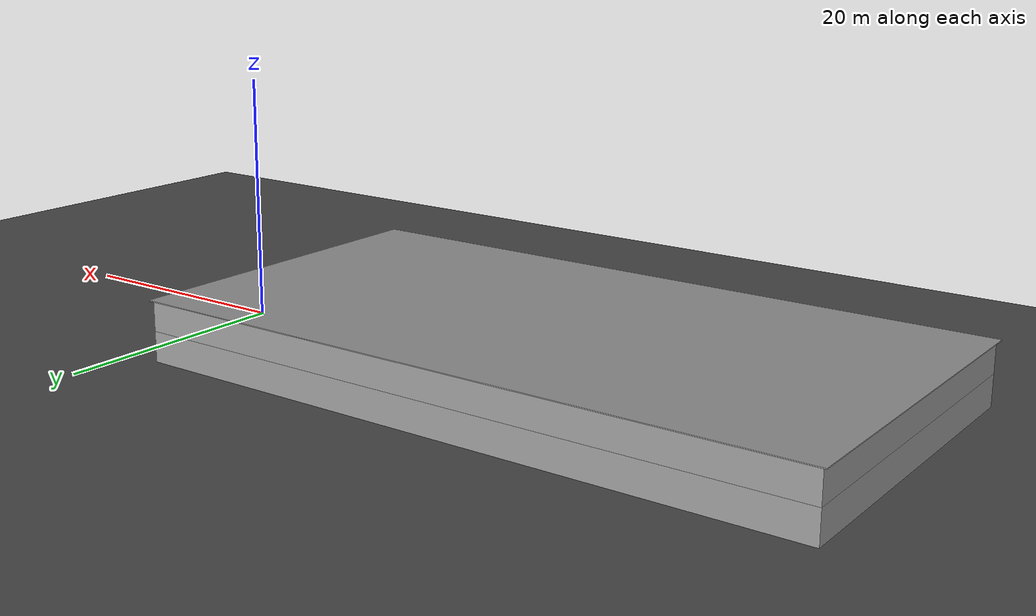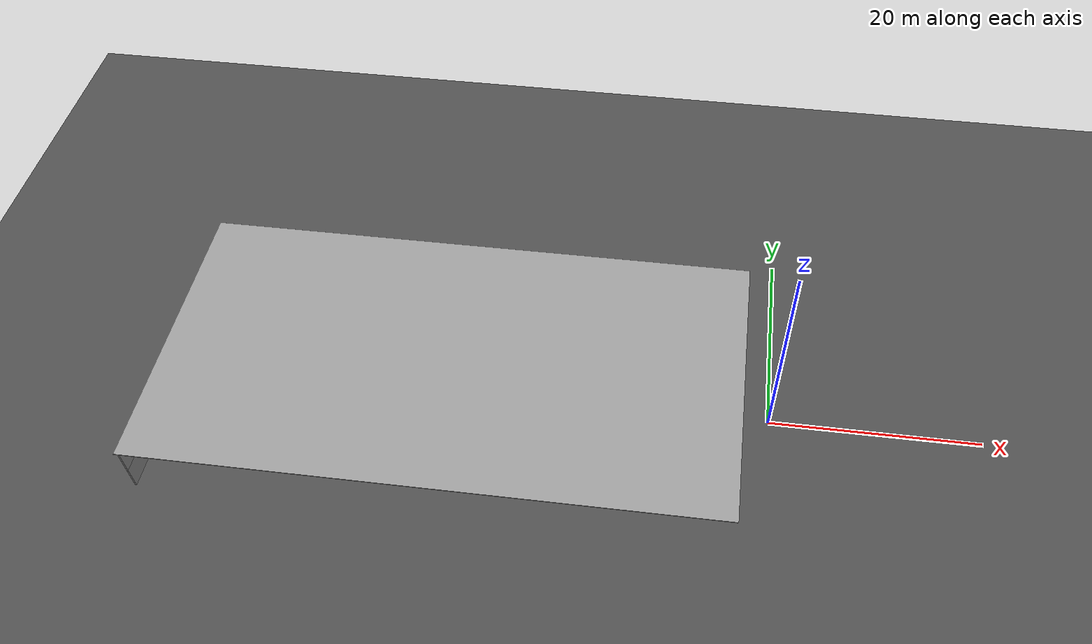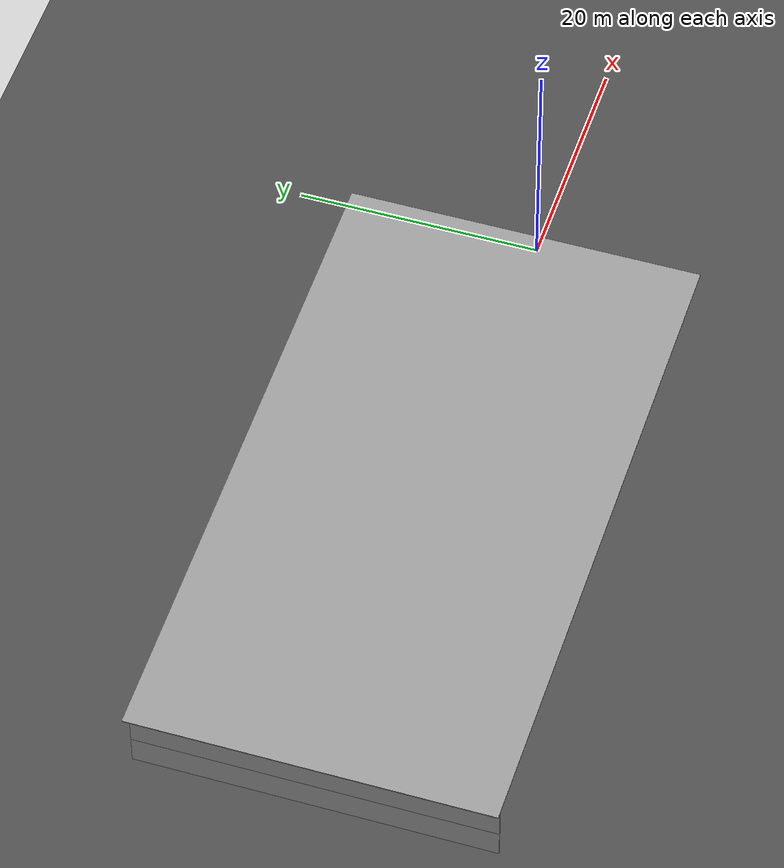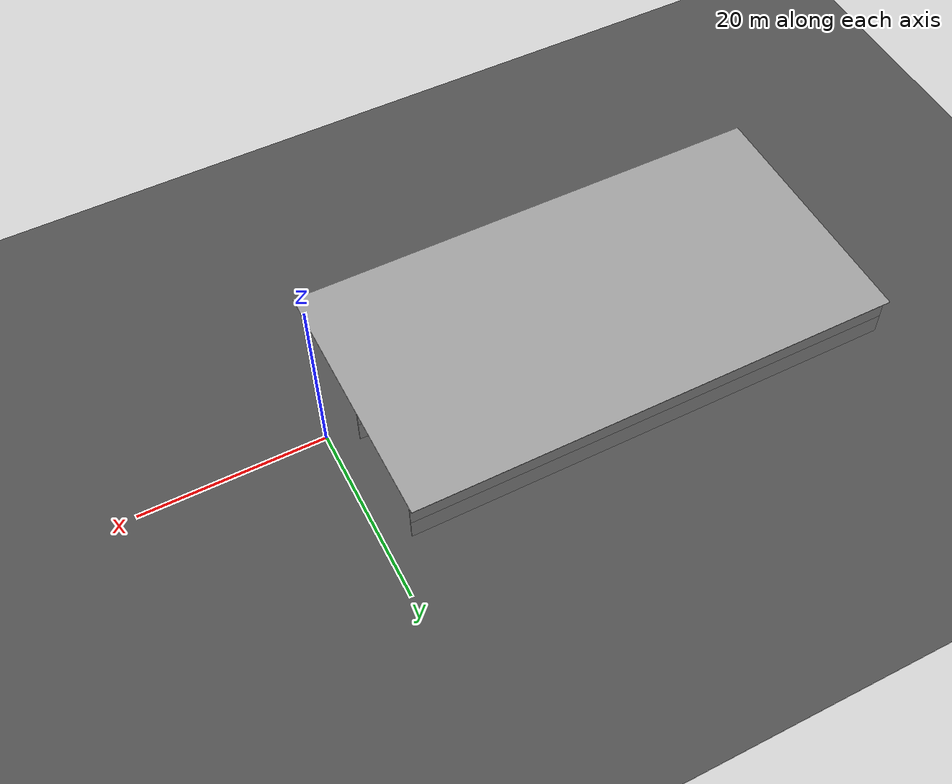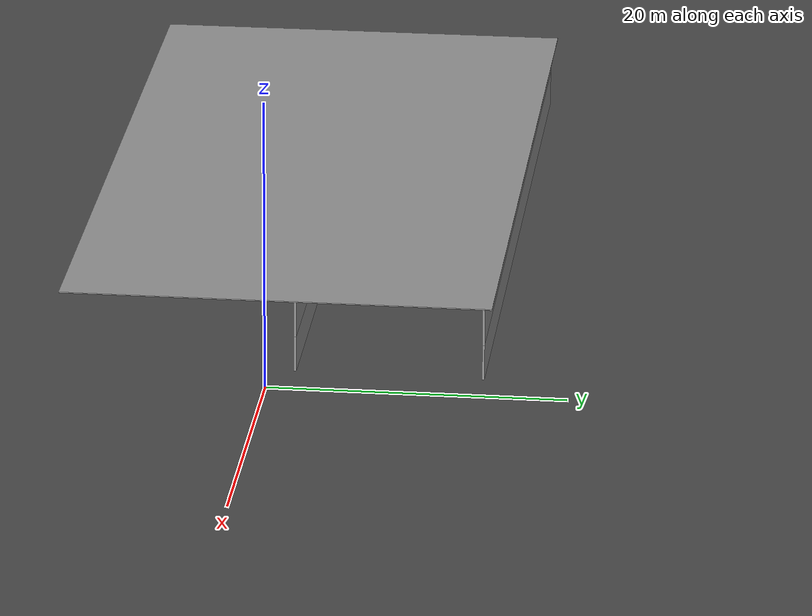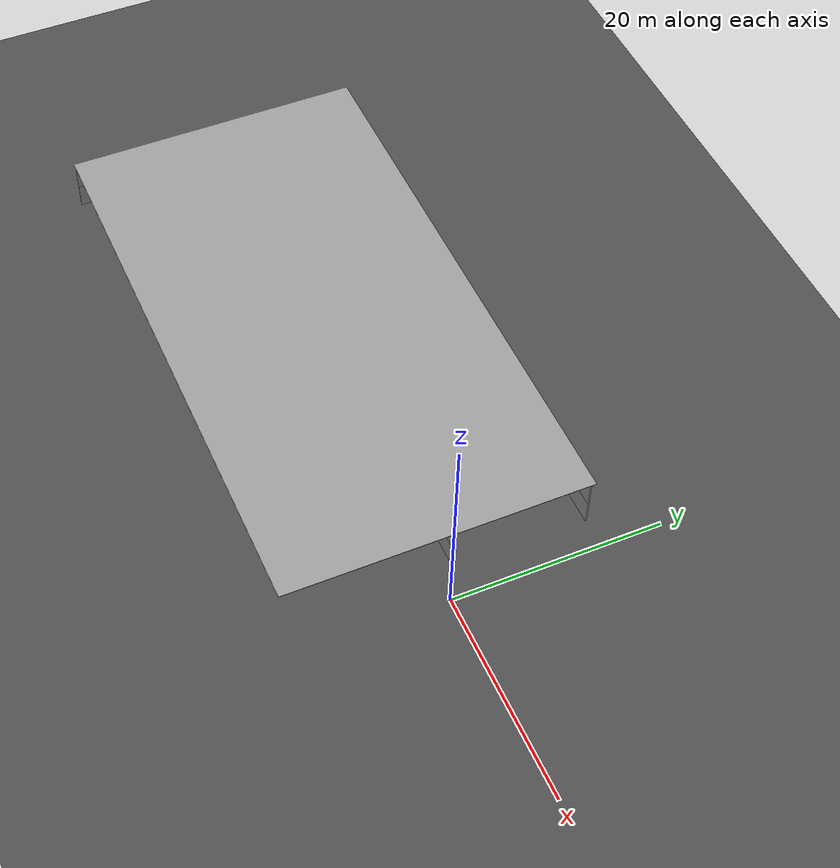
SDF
<sdf version="1.6">
 <world name="default">
  <model name="ground_plane">
   <static>1</static>
   <link name="link">
    <collision name="collision">
     <geometry><plane><normal>0 0 1</normal><size>100 100</size></plane></geometry>
     <surface>
      <contact><collide_bitmask>65535</collide_bitmask></contact>
      <friction><ode><mu>100</mu><mu2>50</mu2></ode></friction>
     </surface>
    </collision>
    <visual name="visual">
     <cast_shadows>0</cast_shadows>
     <geometry><plane><normal>0 0 1</normal><size>100 100</size></plane></geometry>
     <material>
      <script><uri>file://media/materials/scripts/gazebo.material</uri><name>Gazebo/Grey</name></script>
     </material>
    </visual>
   </link>
  </model>
  <model name="asphalt_plane">
   <static>1</static>
   <link name="link">
    <collision name="collision"><geometry><box><size>200 200 0.1</size></box></geometry></collision>
    <visual name="visual">
     <cast_shadows>0</cast_shadows>
     <geometry><box><size>200 200 0.1</size></box></geometry>
     <material>
      <script>
       <uri>model://asphalt_plane/materials/scripts</uri>
       <uri>model://asphalt_plane/materials/textures</uri>
       <name>vrc/asphalt</name>
      </script>
     </material>
    </visual>
   </link>
  </model>
  <model name="Biggest">
   <link name="Wall_108">
    <pose>-0.22022 2.64491 0 0 -0 1.5708</pose>
    <visual name="Wall_108_Visual">
     <pose>0 0 1.25 0 -0 0</pose>
     <geometry><box><size>2 0.15 2.5</size></box></geometry>
     <material>
      <script><uri>file://media/materials/scripts/gazebo.material</uri><name>Gazebo/Grey</name></script>
      <ambient>1 1 1 1</ambient>
     </material>
     <meta><layer>0</layer></meta>
    </visual>
    <collision name="Wall_108_Collision">
     <pose>0 0 1.25 0 -0 0</pose>
     <geometry><box><size>2 0.15 2.5</size></box></geometry>
     <surface>
      <friction>
       <ode><mu>1</mu><mu2>1</mu2><fdir1>0 0 0</fdir1><slip1>0</slip1><slip2>0</slip2></ode>
       <torsional>
        <coefficient>1</coefficient>
        <patch_radius>0</patch_radius>
        <surface_radius>0</surface_radius>
        <use_patch_radius>1</use_patch_radius>
        <ode><slip>0</slip></ode>
       </torsional>
      </friction>
      <bounce><restitution_coefficient>0</restitution_coefficient><threshold>1e+06</threshold></bounce>
      <contact>
       <collide_without_contact>0</collide_without_contact>
       <collide_without_contact_bitmask>1</collide_without_contact_bitmask>
       <collide_bitmask>1</collide_bitmask>
       <ode>
        <soft_cfm>0</soft_cfm>
        <soft_erp>0.2</soft_erp>
        <kp>1e+13</kp>
        <kd>1</kd>
        <max_vel>0.01</max_vel>
        <min_depth>0</min_depth>
       </ode>
       <bullet>
        <split_impulse>1</split_impulse>
        <split_impulse_penetration_threshold>-0.01</split_impulse_penetration_threshold>
        <soft_cfm>0</soft_cfm>
        <soft_erp>0.2</soft_erp>
        <kp>1e+13</kp>
        <kd>1</kd>
       </bullet>
      </contact>
     </surface>
    </collision>
   </link>
   <link name="Wall_118">
    <pose>-0.021436 14.1853 2.5 0 -0 0</pose>
    <visual name="Wall_118_Visual">
     <pose>0 0 1.25 0 -0 0</pose>
     <geometry><box><size>54.5 0.15 2.5</size></box></geometry>
     <material>
      <script><uri>file://media/materials/scripts/gazebo.material</uri><name>Gazebo/Grey</name></script>
      <ambient>1 1 1 1</ambient>
     </material>
     <meta><layer>1</layer></meta>
    </visual>
    <collision name="Wall_118_Collision">
     <pose>0 0 1.25 0 -0 0</pose>
     <geometry><box><size>54.5 0.15 2.5</size></box></geometry>
     <surface>
      <friction>
       <ode><mu>1</mu><mu2>1</mu2><fdir1>0 0 0</fdir1><slip1>0</slip1><slip2>0</slip2></ode>
       <torsional>
        <coefficient>1</coefficient>
        <patch_radius>0</patch_radius>
        <surface_radius>0</surface_radius>
        <use_patch_radius>1</use_patch_radius>
        <ode><slip>0</slip></ode>
       </torsional>
      </friction>
      <bounce><restitution_coefficient>0</restitution_coefficient><threshold>1e+06</threshold></bounce>
      <contact>
       <collide_without_contact>0</collide_without_contact>
       <collide_without_contact_bitmask>1</collide_without_contact_bitmask>
       <collide_bitmask>1</collide_bitmask>
       <ode>
        <soft_cfm>0</soft_cfm>
        <soft_erp>0.2</soft_erp>
        <kp>1e+13</kp>
        <kd>1</kd>
        <max_vel>0.01</max_vel>
        <min_depth>0</min_depth>
       </ode>
       <bullet>
        <split_impulse>1</split_impulse>
        <split_impulse_penetration_threshold>-0.01</split_impulse_penetration_threshold>
        <soft_cfm>0</soft_cfm>
        <soft_erp>0.2</soft_erp>
        <kp>1e+13</kp>
        <kd>1</kd>
       </bullet>
      </contact>
     </surface>
    </collision>
   </link>
   <link name="Wall_121">
    <pose>-27.1964 0.010278 2.5 0 -0 1.5708</pose>
    <visual name="Wall_121_Visual">
     <pose>0 0 1.25 0 -0 0</pose>
     <geometry><box><size>28.5 0.15 2.5</size></box></geometry>
     <material>
      <script><uri>file://media/materials/scripts/gazebo.material</uri><name>Gazebo/Grey</name></script>
      <ambient>1 1 1 1</ambient>
     </material>
     <meta><layer>1</layer></meta>
    </visual>
    <collision name="Wall_121_Collision">
     <pose>0 0 1.25 0 -0 0</pose>
     <geometry><box><size>28.5 0.15 2.5</size></box></geometry>
     <surface>
      <friction>
       <ode><mu>1</mu><mu2>1</mu2><fdir1>0 0 0</fdir1><slip1>0</slip1><slip2>0</slip2></ode>
       <torsional>
        <coefficient>1</coefficient>
        <patch_radius>0</patch_radius>
        <surface_radius>0</surface_radius>
        <use_patch_radius>1</use_patch_radius>
        <ode><slip>0</slip></ode>
       </torsional>
      </friction>
      <bounce><restitution_coefficient>0</restitution_coefficient><threshold>1e+06</threshold></bounce>
      <contact>
       <collide_without_contact>0</collide_without_contact>
       <collide_without_contact_bitmask>1</collide_without_contact_bitmask>
       <collide_bitmask>1</collide_bitmask>
       <ode>
        <soft_cfm>0</soft_cfm>
        <soft_erp>0.2</soft_erp>
        <kp>1e+13</kp>
        <kd>1</kd>
        <max_vel>0.01</max_vel>
        <min_depth>0</min_depth>
       </ode>
       <bullet>
        <split_impulse>1</split_impulse>
        <split_impulse_penetration_threshold>-0.01</split_impulse_penetration_threshold>
        <soft_cfm>0</soft_cfm>
        <soft_erp>0.2</soft_erp>
        <kp>1e+13</kp>
        <kd>1</kd>
       </bullet>
      </contact>
     </surface>
    </collision>
   </link>
   <link name="Wall_122">
    <pose>-0.049451 1.59949 2.5 0 -0 0</pose>
    <visual name="Wall_122_Visual_0">
     <pose>-13.394 0 1.25 0 -0 0</pose>
     <geometry><box><size>27.4621 0.15 2.5</size></box></geometry>
     <material>
      <script><uri>file://media/materials/scripts/gazebo.material</uri><name>Gazebo/Grey</name></script>
      <ambient>1 1 1 1</ambient>
     </material>
     <meta><layer>1</layer></meta>
    </visual>
    <visual name="Wall_122_Visual_1">
     <pose>14.181 0 1.25 0 -0 0</pose>
     <geometry><box><size>25.8879 0.15 2.5</size></box></geometry>
     <material>
      <script><uri>file://media/materials/scripts/gazebo.material</uri><name>Gazebo/Grey</name></script>
      <ambient>1 1 1 1</ambient>
     </material>
     <meta><layer>1</layer></meta>
    </visual>
    <visual name="Wall_122_Visual_2">
     <pose>0.787083 0 2.25 0 -0 0</pose>
     <geometry><box><size>0.9 0.15 0.5</size></box></geometry>
     <material>
      <script><uri>file://media/materials/scripts/gazebo.material</uri><name>Gazebo/Grey</name></script>
      <ambient>1 1 1 1</ambient>
     </material>
     <meta><layer>1</layer></meta>
    </visual>
    <collision name="Wall_122_Collision_0">
     <pose>-13.394 0 1.25 0 -0 0</pose>
     <geometry><box><size>27.4621 0.15 2.5</size></box></geometry>
     <surface>
      <friction>
       <ode><mu>1</mu><mu2>1</mu2><fdir1>0 0 0</fdir1><slip1>0</slip1><slip2>0</slip2></ode>
       <torsional>
        <coefficient>1</coefficient>
        <patch_radius>0</patch_radius>
        <surface_radius>0</surface_radius>
        <use_patch_radius>1</use_patch_radius>
        <ode><slip>0</slip></ode>
       </torsional>
      </friction>
      <bounce><restitution_coefficient>0</restitution_coefficient><threshold>1e+06</threshold></bounce>
      <contact>
       <collide_without_contact>0</collide_without_contact>
       <collide_without_contact_bitmask>1</collide_without_contact_bitmask>
       <collide_bitmask>1</collide_bitmask>
       <ode>
        <soft_cfm>0</soft_cfm>
        <soft_erp>0.2</soft_erp>
        <kp>1e+13</kp>
        <kd>1</kd>
        <max_vel>0.01</max_vel>
        <min_depth>0</min_depth>
       </ode>
       <bullet>
        <split_impulse>1</split_impulse>
        <split_impulse_penetration_threshold>-0.01</split_impulse_penetration_threshold>
        <soft_cfm>0</soft_cfm>
        <soft_erp>0.2</soft_erp>
        <kp>1e+13</kp>
        <kd>1</kd>
       </bullet>
      </contact>
     </surface>
    </collision>
    <collision name="Wall_122_Collision_1">
     <pose>14.181 0 1.25 0 -0 0</pose>
     <geometry><box><size>25.8879 0.15 2.5</size></box></geometry>
     <surface>
      <friction>
       <ode><mu>1</mu><mu2>1</mu2><fdir1>0 0 0</fdir1><slip1>0</slip1><slip2>0</slip2></ode>
       <torsional>
        <coefficient>1</coefficient>
        <patch_radius>0</patch_radius>
        <surface_radius>0</surface_radius>
        <use_patch_radius>1</use_patch_radius>
        <ode><slip>0</slip></ode>
       </torsional>
      </friction>
      <bounce><restitution_coefficient>0</restitution_coefficient><threshold>1e+06</threshold></bounce>
      <contact>
       <collide_without_contact>0</collide_without_contact>
       <collide_without_contact_bitmask>1</collide_without_contact_bitmask>
       <collide_bitmask>1</collide_bitmask>
       <ode>
        <soft_cfm>0</soft_cfm>
        <soft_erp>0.2</soft_erp>
        <kp>1e+13</kp>
        <kd>1</kd>
        <max_vel>0.01</max_vel>
        <min_depth>0</min_depth>
       </ode>
       <bullet>
        <split_impulse>1</split_impulse>
        <split_impulse_penetration_threshold>-0.01</split_impulse_penetration_threshold>
        <soft_cfm>0</soft_cfm>
        <soft_erp>0.2</soft_erp>
        <kp>1e+13</kp>
        <kd>1</kd>
       </bullet>
      </contact>
     </surface>
    </collision>
    <collision name="Wall_122_Collision_2">
     <pose>0.787083 0 2.25 0 -0 0</pose>
     <geometry><box><size>0.9 0.15 0.5</size></box></geometry>
     <surface>
      <friction>
       <ode><mu>1</mu><mu2>1</mu2><fdir1>0 0 0</fdir1><slip1>0</slip1><slip2>0</slip2></ode>
       <torsional>
        <coefficient>1</coefficient>
        <patch_radius>0</patch_radius>
        <surface_radius>0</surface_radius>
        <use_patch_radius>1</use_patch_radius>
        <ode><slip>0</slip></ode>
       </torsional>
      </friction>
      <bounce><restitution_coefficient>0</restitution_coefficient><threshold>1e+06</threshold></bounce>
      <contact>
       <collide_without_contact>0</collide_without_contact>
       <collide_without_contact_bitmask>1</collide_without_contact_bitmask>
       <collide_bitmask>1</collide_bitmask>
       <ode>
        <soft_cfm>0</soft_cfm>
        <soft_erp>0.2</soft_erp>
        <kp>1e+13</kp>
        <kd>1</kd>
        <max_vel>0.01</max_vel>
        <min_depth>0</min_depth>
       </ode>
       <bullet>
        <split_impulse>1</split_impulse>
        <split_impulse_penetration_threshold>-0.01</split_impulse_penetration_threshold>
        <soft_cfm>0</soft_cfm>
        <soft_erp>0.2</soft_erp>
        <kp>1e+13</kp>
        <kd>1</kd>
       </bullet>
      </contact>
     </surface>
    </collision>
   </link>
   <link name="Wall_125">
    <pose>-14.8551 -0.996836 2.5 0 0 -1.52344</pose>
    <visual name="Wall_125_Visual">
     <pose>0 0 1.25 0 -0 0</pose>
     <geometry><box><size>3.07322 0.15 2.5</size></box></geometry>
     <material>
      <script><uri>file://media/materials/scripts/gazebo.material</uri><name>Gazebo/Grey</name></script>
      <ambient>1 1 1 1</ambient>
     </material>
     <meta><layer>1</layer></meta>
    </visual>
    <collision name="Wall_125_Collision">
     <pose>0 0 1.25 0 -0 0</pose>
     <geometry><box><size>3.07322 0.15 2.5</size></box></geometry>
     <surface>
      <friction>
       <ode><mu>1</mu><mu2>1</mu2><fdir1>0 0 0</fdir1><slip1>0</slip1><slip2>0</slip2></ode>
       <torsional>
        <coefficient>1</coefficient>
        <patch_radius>0</patch_radius>
        <surface_radius>0</surface_radius>
        <use_patch_radius>1</use_patch_radius>
        <ode><slip>0</slip></ode>
       </torsional>
      </friction>
      <bounce><restitution_coefficient>0</restitution_coefficient><threshold>1e+06</threshold></bounce>
      <contact>
       <collide_without_contact>0</collide_without_contact>
       <collide_without_contact_bitmask>1</collide_without_contact_bitmask>
       <collide_bitmask>1</collide_bitmask>
       <ode>
        <soft_cfm>0</soft_cfm>
        <soft_erp>0.2</soft_erp>
        <kp>1e+13</kp>
        <kd>1</kd>
        <max_vel>0.01</max_vel>
        <min_depth>0</min_depth>
       </ode>
       <bullet>
        <split_impulse>1</split_impulse>
        <split_impulse_penetration_threshold>-0.01</split_impulse_penetration_threshold>
        <soft_cfm>0</soft_cfm>
        <soft_erp>0.2</soft_erp>
        <kp>1e+13</kp>
        <kd>1</kd>
       </bullet>
      </contact>
     </surface>
    </collision>
   </link>
   <link name="Wall_132">
    <pose>-0.22022 2.64491 2.5 0 -0 1.5708</pose>
    <visual name="Wall_132_Visual">
     <pose>0 0 1.25 0 -0 0</pose>
     <geometry><box><size>2 0.15 2.5</size></box></geometry>
     <material>
      <script><uri>file://media/materials/scripts/gazebo.material</uri><name>Gazebo/Grey</name></script>
      <ambient>1 1 1 1</ambient>
     </material>
     <meta><layer>1</layer></meta>
    </visual>
    <collision name="Wall_132_Collision">
     <pose>0 0 1.25 0 -0 0</pose>
     <geometry><box><size>2 0.15 2.5</size></box></geometry>
     <surface>
      <friction>
       <ode><mu>1</mu><mu2>1</mu2><fdir1>0 0 0</fdir1><slip1>0</slip1><slip2>0</slip2></ode>
       <torsional>
        <coefficient>1</coefficient>
        <patch_radius>0</patch_radius>
        <surface_radius>0</surface_radius>
        <use_patch_radius>1</use_patch_radius>
        <ode><slip>0</slip></ode>
       </torsional>
      </friction>
      <bounce><restitution_coefficient>0</restitution_coefficient><threshold>1e+06</threshold></bounce>
      <contact>
       <collide_without_contact>0</collide_without_contact>
       <collide_without_contact_bitmask>1</collide_without_contact_bitmask>
       <collide_bitmask>1</collide_bitmask>
       <ode>
        <soft_cfm>0</soft_cfm>
        <soft_erp>0.2</soft_erp>
        <kp>1e+13</kp>
        <kd>1</kd>
        <max_vel>0.01</max_vel>
        <min_depth>0</min_depth>
       </ode>
       <bullet>
        <split_impulse>1</split_impulse>
        <split_impulse_penetration_threshold>-0.01</split_impulse_penetration_threshold>
        <soft_cfm>0</soft_cfm>
        <soft_erp>0.2</soft_erp>
        <kp>1e+13</kp>
        <kd>1</kd>
       </bullet>
      </contact>
     </surface>
    </collision>
   </link>
   <link name="Wall_83">
    <pose>-0.021435 14.1853 0 0 -0 0</pose>
    <visual name="Wall_83_Visual">
     <pose>0 0 1.25 0 -0 0</pose>
     <geometry><box><size>54.5 0.15 2.5</size></box></geometry>
     <material>
      <script><uri>file://media/materials/scripts/gazebo.material</uri><name>Gazebo/Grey</name></script>
      <ambient>1 1 1 1</ambient>
     </material>
     <meta><layer>0</layer></meta>
    </visual>
    <collision name="Wall_83_Collision">
     <pose>0 0 1.25 0 -0 0</pose>
     <geometry><box><size>54.5 0.15 2.5</size></box></geometry>
     <surface>
      <friction>
       <ode><mu>1</mu><mu2>1</mu2><fdir1>0 0 0</fdir1><slip1>0</slip1><slip2>0</slip2></ode>
       <torsional>
        <coefficient>1</coefficient>
        <patch_radius>0</patch_radius>
        <surface_radius>0</surface_radius>
        <use_patch_radius>1</use_patch_radius>
        <ode><slip>0</slip></ode>
       </torsional>
      </friction>
      <bounce><restitution_coefficient>0</restitution_coefficient><threshold>1e+06</threshold></bounce>
      <contact>
       <collide_without_contact>0</collide_without_contact>
       <collide_without_contact_bitmask>1</collide_without_contact_bitmask>
       <collide_bitmask>1</collide_bitmask>
       <ode>
        <soft_cfm>0</soft_cfm>
        <soft_erp>0.2</soft_erp>
        <kp>1e+13</kp>
        <kd>1</kd>
        <max_vel>0.01</max_vel>
        <min_depth>0</min_depth>
       </ode>
       <bullet>
        <split_impulse>1</split_impulse>
        <split_impulse_penetration_threshold>-0.01</split_impulse_penetration_threshold>
        <soft_cfm>0</soft_cfm>
        <soft_erp>0.2</soft_erp>
        <kp>1e+13</kp>
        <kd>1</kd>
       </bullet>
      </contact>
     </surface>
    </collision>
   </link>
   <link name="Wall_86">
    <pose>-27.1964 0.010278 0 0 -0 1.5708</pose>
    <visual name="Wall_86_Visual">
     <pose>0 0 1.25 0 -0 0</pose>
     <geometry><box><size>28.5 0.15 2.5</size></box></geometry>
     <material>
      <script><uri>file://media/materials/scripts/gazebo.material</uri><name>Gazebo/Grey</name></script>
      <ambient>1 1 1 1</ambient>
     </material>
     <meta><layer>0</layer></meta>
    </visual>
    <collision name="Wall_86_Collision">
     <pose>0 0 1.25 0 -0 0</pose>
     <geometry><box><size>28.5 0.15 2.5</size></box></geometry>
     <surface>
      <friction>
       <ode><mu>1</mu><mu2>1</mu2><fdir1>0 0 0</fdir1><slip1>0</slip1><slip2>0</slip2></ode>
       <torsional>
        <coefficient>1</coefficient>
        <patch_radius>0</patch_radius>
        <surface_radius>0</surface_radius>
        <use_patch_radius>1</use_patch_radius>
        <ode><slip>0</slip></ode>
       </torsional>
      </friction>
      <bounce><restitution_coefficient>0</restitution_coefficient><threshold>1e+06</threshold></bounce>
      <contact>
       <collide_without_contact>0</collide_without_contact>
       <collide_without_contact_bitmask>1</collide_without_contact_bitmask>
       <collide_bitmask>1</collide_bitmask>
       <ode>
        <soft_cfm>0</soft_cfm>
        <soft_erp>0.2</soft_erp>
        <kp>1e+13</kp>
        <kd>1</kd>
        <max_vel>0.01</max_vel>
        <min_depth>0</min_depth>
       </ode>
       <bullet>
        <split_impulse>1</split_impulse>
        <split_impulse_penetration_threshold>-0.01</split_impulse_penetration_threshold>
        <soft_cfm>0</soft_cfm>
        <soft_erp>0.2</soft_erp>
        <kp>1e+13</kp>
        <kd>1</kd>
       </bullet>
      </contact>
     </surface>
    </collision>
   </link>
   <link name="Wall_88">
    <pose>-0.049451 1.59949 0 0 -0 0</pose>
    <visual name="Wall_88_Visual_0">
     <pose>-13.0953 0 1.25 0 -0 0</pose>
     <geometry><box><size>28.0595 0.15 2.5</size></box></geometry>
     <material>
      <script><uri>file://media/materials/scripts/gazebo.material</uri><name>Gazebo/Grey</name></script>
      <ambient>1 1 1 1</ambient>
     </material>
     <meta><layer>0</layer></meta>
    </visual>
    <visual name="Wall_88_Visual_1">
     <pose>14.4797 0 1.25 0 -0 0</pose>
     <geometry><box><size>25.2905 0.15 2.5</size></box></geometry>
     <material>
      <script><uri>file://media/materials/scripts/gazebo.material</uri><name>Gazebo/Grey</name></script>
      <ambient>1 1 1 1</ambient>
     </material>
     <meta><layer>0</layer></meta>
    </visual>
    <visual name="Wall_88_Visual_2">
     <pose>1.38446 0 2.25 0 -0 0</pose>
     <geometry><box><size>0.9 0.15 0.5</size></box></geometry>
     <material>
      <script><uri>file://media/materials/scripts/gazebo.material</uri><name>Gazebo/Grey</name></script>
      <ambient>1 1 1 1</ambient>
     </material>
     <meta><layer>0</layer></meta>
    </visual>
    <collision name="Wall_88_Collision_0">
     <pose>-13.0953 0 1.25 0 -0 0</pose>
     <geometry><box><size>28.0595 0.15 2.5</size></box></geometry>
     <surface>
      <friction>
       <ode><mu>1</mu><mu2>1</mu2><fdir1>0 0 0</fdir1><slip1>0</slip1><slip2>0</slip2></ode>
       <torsional>
        <coefficient>1</coefficient>
        <patch_radius>0</patch_radius>
        <surface_radius>0</surface_radius>
        <use_patch_radius>1</use_patch_radius>
        <ode><slip>0</slip></ode>
       </torsional>
      </friction>
      <bounce><restitution_coefficient>0</restitution_coefficient><threshold>1e+06</threshold></bounce>
      <contact>
       <collide_without_contact>0</collide_without_contact>
       <collide_without_contact_bitmask>1</collide_without_contact_bitmask>
       <collide_bitmask>1</collide_bitmask>
       <ode>
        <soft_cfm>0</soft_cfm>
        <soft_erp>0.2</soft_erp>
        <kp>1e+13</kp>
        <kd>1</kd>
        <max_vel>0.01</max_vel>
        <min_depth>0</min_depth>
       </ode>
       <bullet>
        <split_impulse>1</split_impulse>
        <split_impulse_penetration_threshold>-0.01</split_impulse_penetration_threshold>
        <soft_cfm>0</soft_cfm>
        <soft_erp>0.2</soft_erp>
        <kp>1e+13</kp>
        <kd>1</kd>
       </bullet>
      </contact>
     </surface>
    </collision>
    <collision name="Wall_88_Collision_1">
     <pose>14.4797 0 1.25 0 -0 0</pose>
     <geometry><box><size>25.2905 0.15 2.5</size></box></geometry>
     <surface>
      <friction>
       <ode><mu>1</mu><mu2>1</mu2><fdir1>0 0 0</fdir1><slip1>0</slip1><slip2>0</slip2></ode>
       <torsional>
        <coefficient>1</coefficient>
        <patch_radius>0</patch_radius>
        <surface_radius>0</surface_radius>
        <use_patch_radius>1</use_patch_radius>
        <ode><slip>0</slip></ode>
       </torsional>
      </friction>
      <bounce><restitution_coefficient>0</restitution_coefficient><threshold>1e+06</threshold></bounce>
      <contact>
       <collide_without_contact>0</collide_without_contact>
       <collide_without_contact_bitmask>1</collide_without_contact_bitmask>
       <collide_bitmask>1</collide_bitmask>
       <ode>
        <soft_cfm>0</soft_cfm>
        <soft_erp>0.2</soft_erp>
        <kp>1e+13</kp>
        <kd>1</kd>
        <max_vel>0.01</max_vel>
        <min_depth>0</min_depth>
       </ode>
       <bullet>
        <split_impulse>1</split_impulse>
        <split_impulse_penetration_threshold>-0.01</split_impulse_penetration_threshold>
        <soft_cfm>0</soft_cfm>
        <soft_erp>0.2</soft_erp>
        <kp>1e+13</kp>
        <kd>1</kd>
       </bullet>
      </contact>
     </surface>
    </collision>
    <collision name="Wall_88_Collision_2">
     <pose>1.38446 0 2.25 0 -0 0</pose>
     <geometry><box><size>0.9 0.15 0.5</size></box></geometry>
     <surface>
      <friction>
       <ode><mu>1</mu><mu2>1</mu2><fdir1>0 0 0</fdir1><slip1>0</slip1><slip2>0</slip2></ode>
       <torsional>
        <coefficient>1</coefficient>
        <patch_radius>0</patch_radius>
        <surface_radius>0</surface_radius>
        <use_patch_radius>1</use_patch_radius>
        <ode><slip>0</slip></ode>
       </torsional>
      </friction>
      <bounce><restitution_coefficient>0</restitution_coefficient><threshold>1e+06</threshold></bounce>
      <contact>
       <collide_without_contact>0</collide_without_contact>
       <collide_without_contact_bitmask>1</collide_without_contact_bitmask>
       <collide_bitmask>1</collide_bitmask>
       <ode>
        <soft_cfm>0</soft_cfm>
        <soft_erp>0.2</soft_erp>
        <kp>1e+13</kp>
        <kd>1</kd>
        <max_vel>0.01</max_vel>
        <min_depth>0</min_depth>
       </ode>
       <bullet>
        <split_impulse>1</split_impulse>
        <split_impulse_penetration_threshold>-0.01</split_impulse_penetration_threshold>
        <soft_cfm>0</soft_cfm>
        <soft_erp>0.2</soft_erp>
        <kp>1e+13</kp>
        <kd>1</kd>
       </bullet>
      </contact>
     </surface>
    </collision>
   </link>
   <link name="Wall_96">
    <pose>-14.8551 -0.996836 0 0 0 -1.52344</pose>
    <visual name="Wall_96_Visual">
     <pose>0 0 1.25 0 -0 0</pose>
     <geometry><box><size>3.07322 0.15 2.5</size></box></geometry>
     <material>
      <script><uri>file://media/materials/scripts/gazebo.material</uri><name>Gazebo/Grey</name></script>
      <ambient>1 1 1 1</ambient>
     </material>
     <meta><layer>0</layer></meta>
    </visual>
    <collision name="Wall_96_Collision">
     <pose>0 0 1.25 0 -0 0</pose>
     <geometry><box><size>3.07322 0.15 2.5</size></box></geometry>
     <surface>
      <friction>
       <ode><mu>1</mu><mu2>1</mu2><fdir1>0 0 0</fdir1><slip1>0</slip1><slip2>0</slip2></ode>
       <torsional>
        <coefficient>1</coefficient>
        <patch_radius>0</patch_radius>
        <surface_radius>0</surface_radius>
        <use_patch_radius>1</use_patch_radius>
        <ode><slip>0</slip></ode>
       </torsional>
      </friction>
      <bounce><restitution_coefficient>0</restitution_coefficient><threshold>1e+06</threshold></bounce>
      <contact>
       <collide_without_contact>0</collide_without_contact>
       <collide_without_contact_bitmask>1</collide_without_contact_bitmask>
       <collide_bitmask>1</collide_bitmask>
       <ode>
        <soft_cfm>0</soft_cfm>
        <soft_erp>0.2</soft_erp>
        <kp>1e+13</kp>
        <kd>1</kd>
        <max_vel>0.01</max_vel>
        <min_depth>0</min_depth>
       </ode>
       <bullet>
        <split_impulse>1</split_impulse>
        <split_impulse_penetration_threshold>-0.01</split_impulse_penetration_threshold>
        <soft_cfm>0</soft_cfm>
        <soft_erp>0.2</soft_erp>
        <kp>1e+13</kp>
        <kd>1</kd>
       </bullet>
      </contact>
     </surface>
    </collision>
   </link>
   <link name="link_2">
    <inertial>
     <mass>109.92</mass>
     <inertia><ixx>7682.87</ixx><ixy>0</ixy><ixz>0</ixz><iyy>27556.1</iyy><iyz>0</iyz><izz>35238.9</izz></inertia>
    </inertial>
    <pose>-0.21867 0.240794 5.04063 0 -0 0</pose>
    <visual name="visual">
     <geometry><box><size>54.8481 28.961 0.069896</size></box></geometry>
     <material>
      <lighting>1</lighting>
      <script><uri>file://media/materials/scripts/gazebo.material</uri><name>Gazebo/Grey</name></script>
     </material>
    </visual>
    <collision name="collision">
     <geometry><box><size>54.8481 28.961 0.069896</size></box></geometry>
     <surface>
      <friction>
       <ode><mu>1</mu><mu2>1</mu2><fdir1>0 0 0</fdir1><slip1>0</slip1><slip2>0</slip2></ode>
       <torsional>
        <coefficient>1</coefficient>
        <patch_radius>0</patch_radius>
        <surface_radius>0</surface_radius>
        <use_patch_radius>1</use_patch_radius>
        <ode><slip>0</slip></ode>
       </torsional>
      </friction>
      <bounce><restitution_coefficient>0</restitution_coefficient><threshold>1e+06</threshold></bounce>
      <contact>
       <collide_without_contact>0</collide_without_contact>
       <collide_without_contact_bitmask>1</collide_without_contact_bitmask>
       <collide_bitmask>1</collide_bitmask>
       <ode>
        <soft_cfm>0</soft_cfm>
        <soft_erp>0.2</soft_erp>
        <kp>1e+13</kp>
        <kd>1</kd>
        <max_vel>0.01</max_vel>
        <min_depth>0</min_depth>
       </ode>
       <bullet>
        <split_impulse>1</split_impulse>
        <split_impulse_penetration_threshold>-0.01</split_impulse_penetration_threshold>
        <soft_cfm>0</soft_cfm>
        <soft_erp>0.2</soft_erp>
        <kp>1e+13</kp>
        <kd>1</kd>
       </bullet>
      </contact>
     </surface>
    </collision>
   </link>
   <static>1</static>
   <pose>-30.023 0.02833 0 0 -0 0</pose>
  </model>
 </world>
</sdf>
